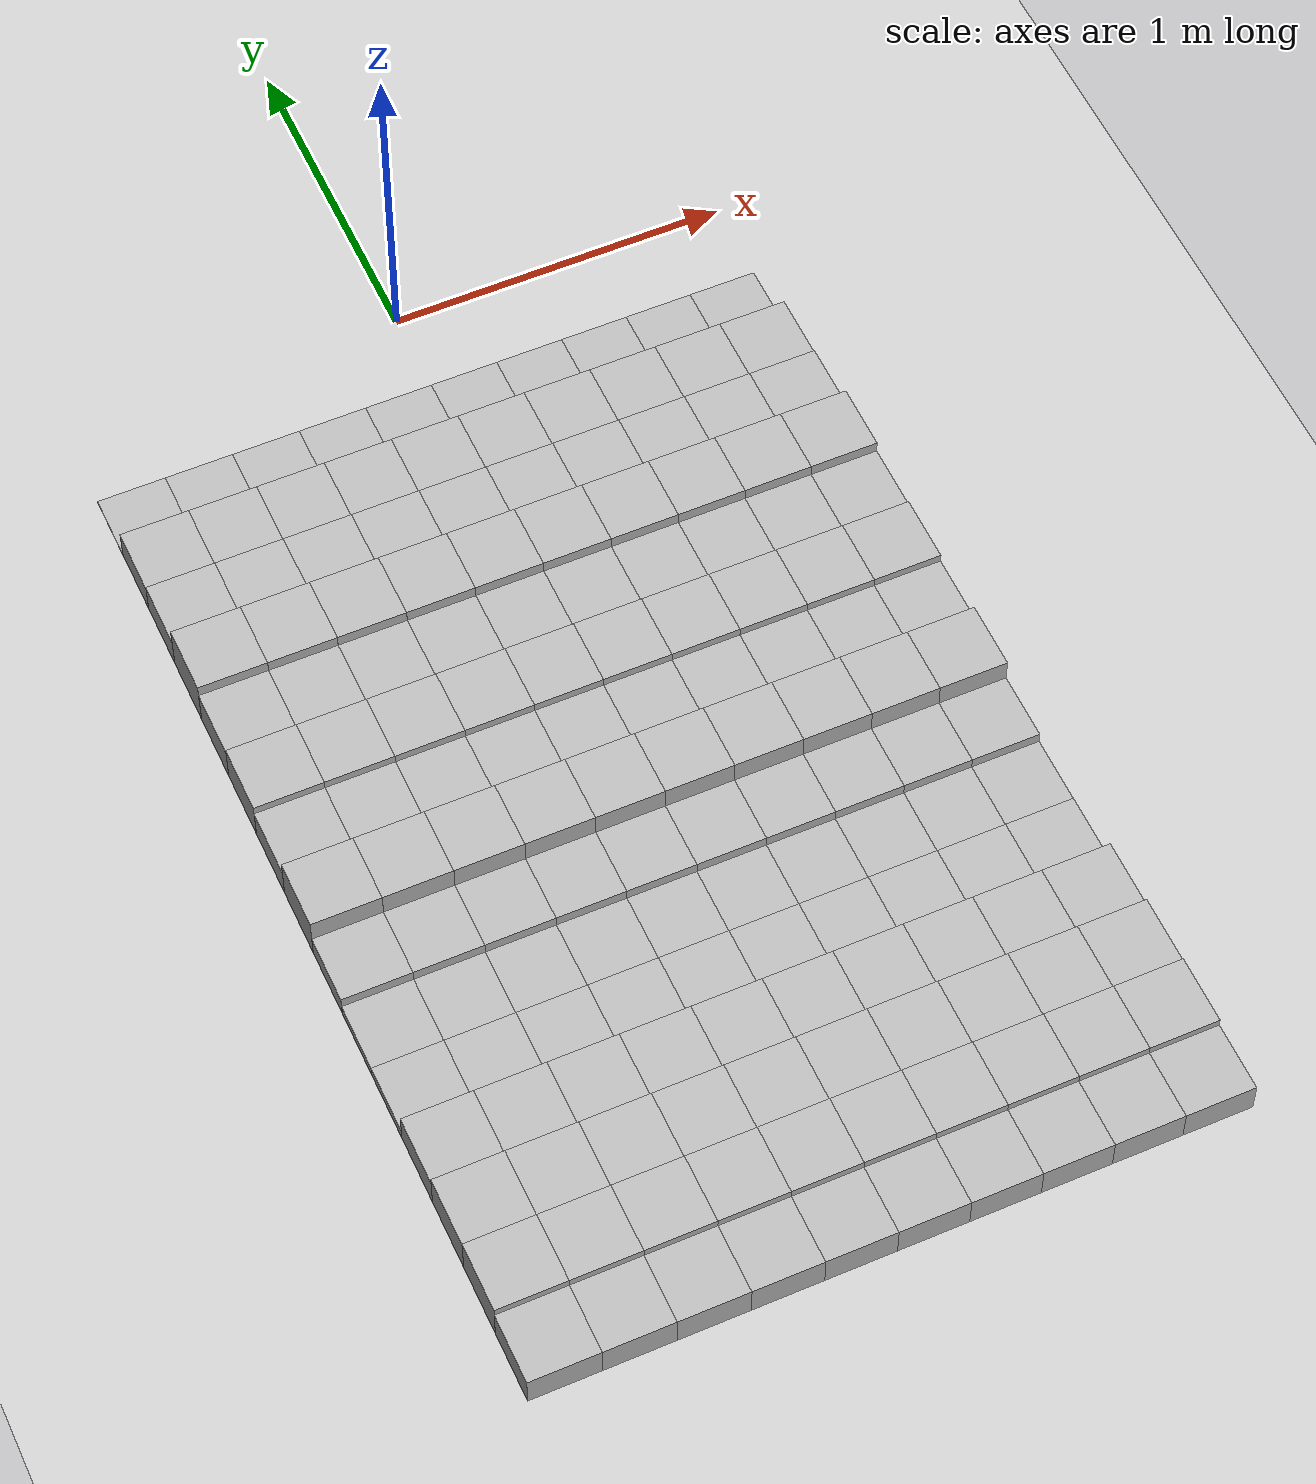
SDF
<?xml version="1.0" ?>
<sdf version="1.6">
  <world name="default">
  <gravity>0 0 -9.81</gravity>
  <physics name="ode_900iters" type="ode" default="true">
    <!-- the combination of 2 params below provides real time factor speed for simulation -->
    <!-- max_real_time_factor = real_time_update_rate * max_step_size -->
    <!-- min_real_time_factor depends only from max_step_size -->
    <real_time_update_rate>1000</real_time_update_rate>
    <max_step_size>0.003 </max_step_size>
      <ode>
        <solver>
          <type>quick</type>
          <iters>900</iters>
        <sor>0.9</sor>
        </solver>
      </ode>
    </physics>
      <include>
      <uri>model://ground_plane</uri>
    </include>
    <include>
      <uri>model://sun</uri>
    </include>
        <include>
		<uri>model://strirus_ga_body_optimization/maps/Generated_terrain_10</uri>
      <name>Terrain</name>
      <pose>0 -0.35 0 0 0 0</pose>
    </include>
  </world>
</sdf>
